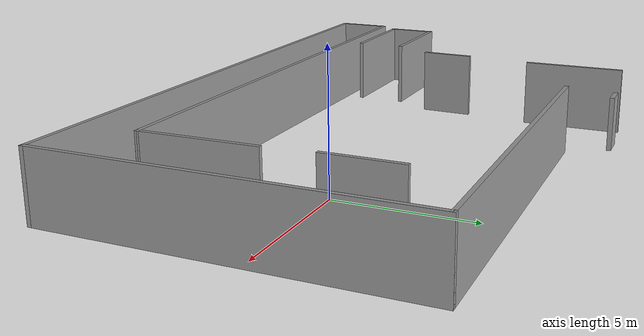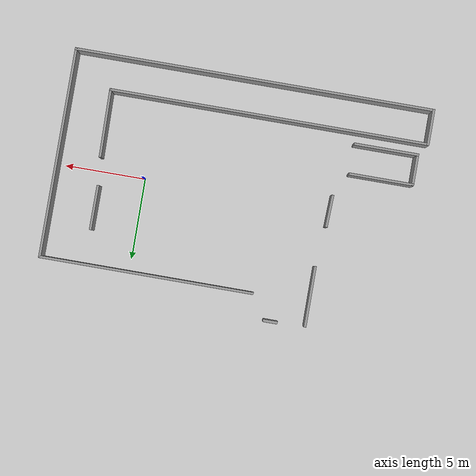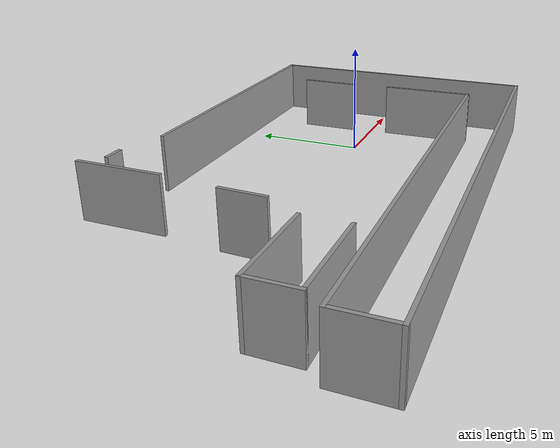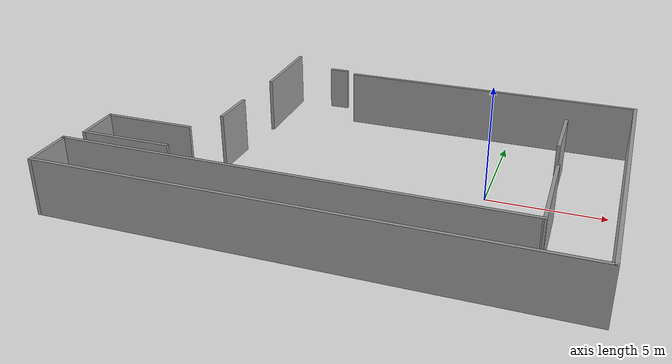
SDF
<?xml version='1.0'?>
<sdf version='1.6'>
  <model name='test'>
    <pose frame=''>-5.64299 0.060955 0 0 -0 0</pose>
    <link name='Door_0'>
      <collision name='Door_0_Collision'>
        <geometry>
          <box>
            <size>0.9 0.17 2</size>
          </box>
        </geometry>
        <pose frame=''>0 0 1 0 -0 0</pose>
      </collision>
      <visual name='Door_0_Visual'>
        <pose frame=''>0 0 1 0 -0 0</pose>
        <geometry>
          <box>
            <size>0.9 0.17 2</size>
          </box>
        </geometry>
        <material>
          <script>
            <uri>file://media/materials/scripts/gazebo.material</uri>
            <name>Gazebo/Grey</name>
          </script>
        </material>
      </visual>
      <pose frame=''>-3.42197 7.23769 0 0 -0 0</pose>
    </link>
    <link name='Wall_10'>
      <collision name='Wall_10_Collision'>
        <geometry>
          <box>
            <size>4.25 0.15 2.5</size>
          </box>
        </geometry>
        <pose frame=''>0 0 1.25 0 -0 0</pose>
      </collision>
      <visual name='Wall_10_Visual'>
        <pose frame=''>0 0 1.25 0 -0 0</pose>
        <geometry>
          <box>
            <size>4.25 0.15 2.5</size>
          </box>
        </geometry>
        <material>
          <script>
            <uri>file://media/materials/scripts/gazebo.material</uri>
            <name>Gazebo/Grey</name>
          </script>
          <ambient>1 1 1 1</ambient>
        </material>
      </visual>
      <pose frame=''>8.51482 -2.975 0 0 -0 1.58796</pose>
    </link>
    <link name='Wall_12'>
      <collision name='Wall_12_Collision'>
        <geometry>
          <box>
            <size>2.00134 0.15 2.5</size>
          </box>
        </geometry>
        <pose frame=''>0 0 1.25 0 -0 0</pose>
      </collision>
      <visual name='Wall_12_Visual'>
        <pose frame=''>0 0 1.25 0 -0 0</pose>
        <geometry>
          <box>
            <size>2.00134 0.15 2.5</size>
          </box>
        </geometry>
        <material>
          <script>
            <uri>file://media/materials/scripts/gazebo.material</uri>
            <name>Gazebo/Grey</name>
          </script>
          <ambient>1 1 1 1</ambient>
        </material>
      </visual>
      <pose frame=''>-5.83518 0 0 0 -0 1.53278</pose>
    </link>
    <link name='Wall_14'>
      <collision name='Wall_14_Collision'>
        <geometry>
          <box>
            <size>2.75 0.15 2.5</size>
          </box>
        </geometry>
        <pose frame=''>0 0 1.25 0 -0 0</pose>
      </collision>
      <visual name='Wall_14_Visual'>
        <pose frame=''>0 0 1.25 0 -0 0</pose>
        <geometry>
          <box>
            <size>2.75 0.15 2.5</size>
          </box>
        </geometry>
        <material>
          <script>
            <uri>file://media/materials/scripts/gazebo.material</uri>
            <name>Gazebo/Grey</name>
          </script>
          <ambient>1 1 1 1</ambient>
        </material>
      </visual>
      <pose frame=''>8.3 2.225 0 0 -0 1.5708</pose>
    </link>
    <link name='Wall_16'>
      <collision name='Wall_16_Collision'>
        <geometry>
          <box>
            <size>3.75 0.15 2.5</size>
          </box>
        </geometry>
        <pose frame=''>0 0 1.25 0 -0 0</pose>
      </collision>
      <visual name='Wall_16_Visual'>
        <pose frame=''>0 0 1.25 0 -0 0</pose>
        <geometry>
          <box>
            <size>3.75 0.15 2.5</size>
          </box>
        </geometry>
        <material>
          <script>
            <uri>file://media/materials/scripts/gazebo.material</uri>
            <name>Gazebo/Grey</name>
          </script>
          <ambient>1 1 1 1</ambient>
        </material>
      </visual>
      <pose frame=''>-5.55 5.325 0 0 -0 1.5708</pose>
    </link>
    <link name='Wall_20'>
      <collision name='Wall_20_Collision'>
        <geometry>
          <box>
            <size>4 0.15 2.5</size>
          </box>
        </geometry>
        <pose frame=''>0 0 1.25 0 -0 0</pose>
      </collision>
      <visual name='Wall_20_Visual'>
        <pose frame=''>0 0 1.25 0 -0 0</pose>
        <geometry>
          <box>
            <size>4 0.15 2.5</size>
          </box>
        </geometry>
        <material>
          <script>
            <uri>file://media/materials/scripts/gazebo.material</uri>
            <name>Gazebo/Grey</name>
          </script>
          <ambient>1 1 1 1</ambient>
        </material>
      </visual>
      <pose frame=''>-8.6186 -2.43647 0 0 -0 3.14159</pose>
    </link>
    <link name='Wall_21'>
      <collision name='Wall_21_Collision'>
        <geometry>
          <box>
            <size>2 0.15 2.5</size>
          </box>
        </geometry>
        <pose frame=''>0 0 1.25 0 -0 0</pose>
      </collision>
      <visual name='Wall_21_Visual'>
        <pose frame=''>0 0 1.25 0 -0 0</pose>
        <geometry>
          <box>
            <size>2 0.15 2.5</size>
          </box>
        </geometry>
        <material>
          <script>
            <uri>file://media/materials/scripts/gazebo.material</uri>
            <name>Gazebo/Grey</name>
          </script>
          <ambient>1 1 1 1</ambient>
        </material>
      </visual>
      <pose frame=''>-10.5436 -3.36147 0 0 0 -1.5708</pose>
    </link>
    <link name='Wall_22'>
      <collision name='Wall_22_Collision'>
        <geometry>
          <box>
            <size>4 0.15 2.5</size>
          </box>
        </geometry>
        <pose frame=''>0 0 1.25 0 -0 0</pose>
      </collision>
      <visual name='Wall_22_Visual'>
        <pose frame=''>0 0 1.25 0 -0 0</pose>
        <geometry>
          <box>
            <size>4 0.15 2.5</size>
          </box>
        </geometry>
        <material>
          <script>
            <uri>file://media/materials/scripts/gazebo.material</uri>
            <name>Gazebo/Grey</name>
          </script>
          <ambient>1 1 1 1</ambient>
        </material>
      </visual>
      <pose frame=''>-8.6186 -4.28647 0 0 -0 0</pose>
    </link>
    <link name='Wall_5'>
      <collision name='Wall_5_Collision'>
        <geometry>
          <box>
            <size>13.25 0.15 2.5</size>
          </box>
        </geometry>
        <pose frame=''>0 0 1.25 0 -0 0</pose>
      </collision>
      <visual name='Wall_5_Visual'>
        <pose frame=''>0 0 1.25 0 -0 0</pose>
        <geometry>
          <box>
            <size>13.25 0.15 2.5</size>
          </box>
        </geometry>
        <material>
          <script>
            <uri>file://media/materials/scripts/gazebo.material</uri>
            <name>Gazebo/Grey</name>
          </script>
          <ambient>1 1 1 1</ambient>
        </material>
      </visual>
      <pose frame=''>4.5 5.725 0 0 -0 0</pose>
    </link>
    <link name='Wall_6'>
      <collision name='Wall_6_Collision'>
        <geometry>
          <box>
            <size>13 0.15 2.5</size>
          </box>
        </geometry>
        <pose frame=''>0 0 1.25 0 -0 0</pose>
      </collision>
      <visual name='Wall_6_Visual'>
        <pose frame=''>0 0 1.25 0 -0 0</pose>
        <geometry>
          <box>
            <size>13 0.15 2.5</size>
          </box>
        </geometry>
        <material>
          <script>
            <uri>file://media/materials/scripts/gazebo.material</uri>
            <name>Gazebo/Grey</name>
          </script>
          <ambient>1 1 1 1</ambient>
        </material>
      </visual>
      <pose frame=''>11.05 -0.7 0 0 0 -1.5708</pose>
    </link>
    <link name='Wall_7'>
      <collision name='Wall_7_Collision'>
        <geometry>
          <box>
            <size>22.25 0.15 2.5</size>
          </box>
        </geometry>
        <pose frame=''>0 0 1.25 0 -0 0</pose>
      </collision>
      <visual name='Wall_7_Visual'>
        <pose frame=''>0 0 1.25 0 -0 0</pose>
        <geometry>
          <box>
            <size>22.25 0.15 2.5</size>
          </box>
        </geometry>
        <material>
          <script>
            <uri>file://media/materials/scripts/gazebo.material</uri>
            <name>Gazebo/Grey</name>
          </script>
          <ambient>1 1 1 1</ambient>
        </material>
      </visual>
      <pose frame=''>0 -7.125 0 0 -0 3.14159</pose>
    </link>
    <link name='Wall_8'>
      <collision name='Wall_8_Collision'>
        <geometry>
          <box>
            <size>2.25 0.15 2.5</size>
          </box>
        </geometry>
        <pose frame=''>0 0 1.25 0 -0 0</pose>
      </collision>
      <visual name='Wall_8_Visual'>
        <pose frame=''>0 0 1.25 0 -0 0</pose>
        <geometry>
          <box>
            <size>2.25 0.15 2.5</size>
          </box>
        </geometry>
        <material>
          <script>
            <uri>file://media/materials/scripts/gazebo.material</uri>
            <name>Gazebo/Grey</name>
          </script>
          <ambient>1 1 1 1</ambient>
        </material>
      </visual>
      <pose frame=''>-11.05 -6.075 0 0 -0 1.5708</pose>
    </link>
    <link name='Wall_9'>
      <collision name='Wall_9_Collision'>
        <geometry>
          <box>
            <size>19.75 0.15 2.5</size>
          </box>
        </geometry>
        <pose frame=''>0 0 1.25 0 -0 0</pose>
      </collision>
      <visual name='Wall_9_Visual'>
        <pose frame=''>0 0 1.25 0 -0 0</pose>
        <geometry>
          <box>
            <size>19.75 0.15 2.5</size>
          </box>
        </geometry>
        <material>
          <script>
            <uri>file://media/materials/scripts/gazebo.material</uri>
            <name>Gazebo/Grey</name>
          </script>
          <ambient>1 1 1 1</ambient>
        </material>
      </visual>
      <pose frame=''>-1.25 -5.025 0 0 -0 0</pose>
    </link>
    <static>1</static>
  </model>
</sdf>
